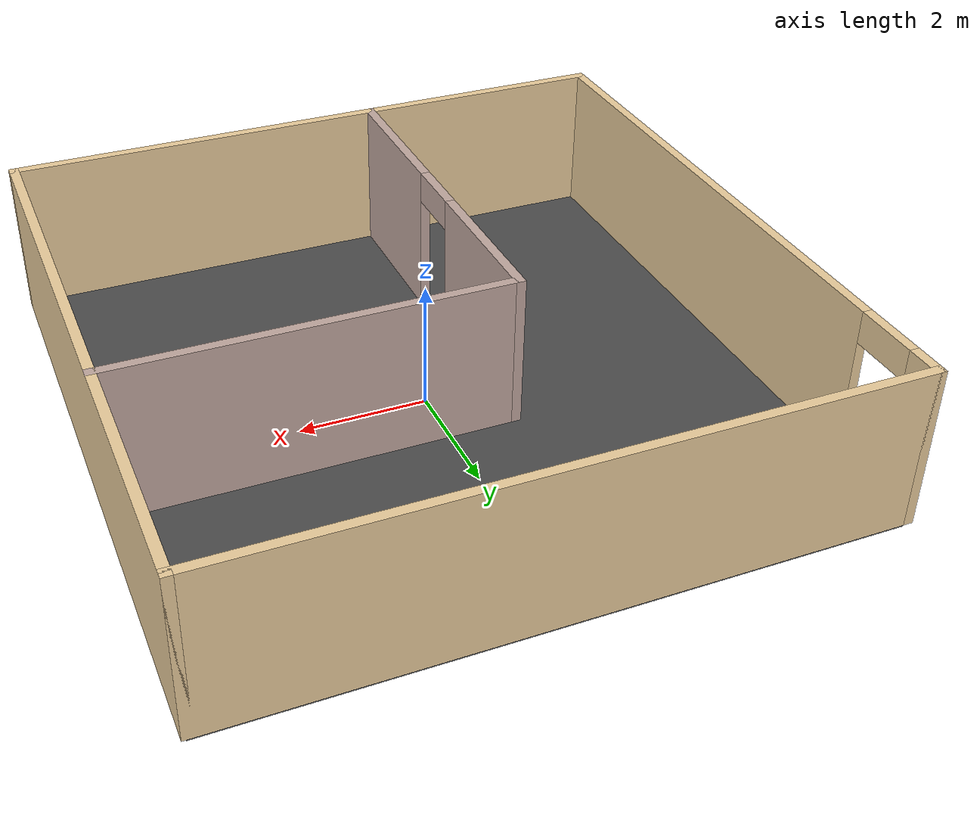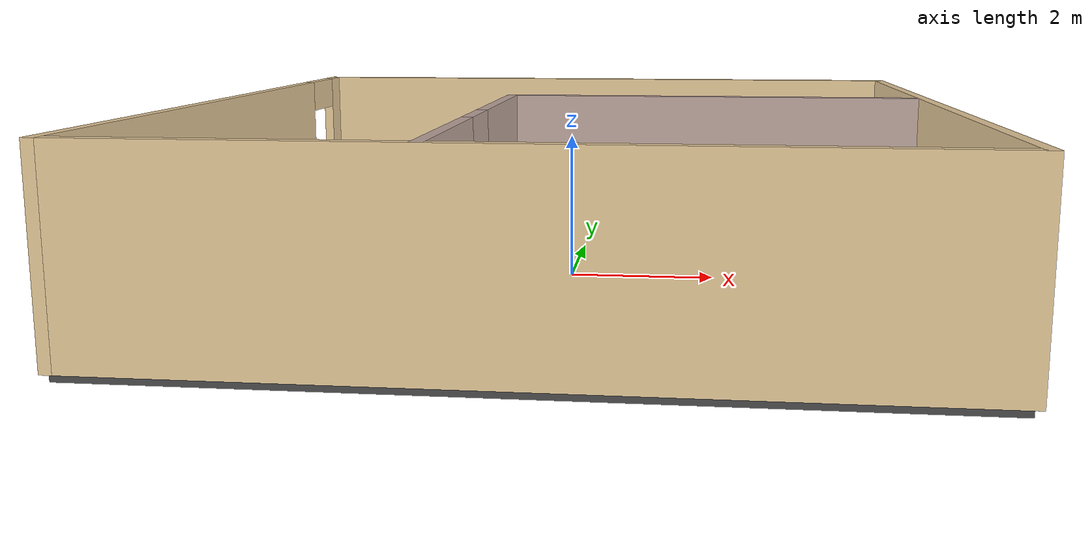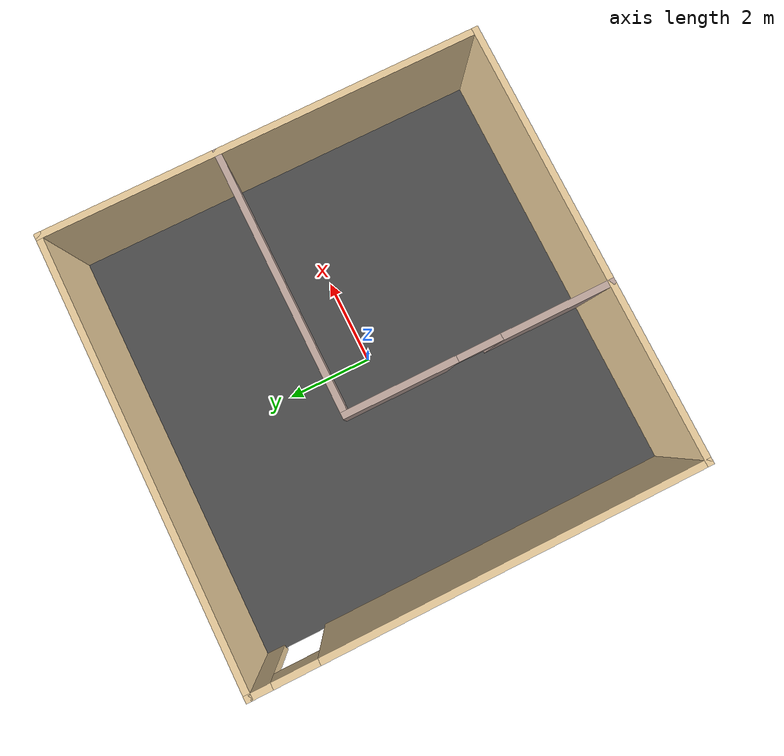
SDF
<?xml version='1.0'?>
<sdf version='1.6'>
  <model name='room'>
    <link name='Wall_24'>
      <pose frame=''>0 5 0 0 -0 0</pose>
      <self_collide>0</self_collide>
      <kinematic>0</kinematic>
      <visual name='Wall_24_Visual'>
        <pose frame=''>0 0 1.25 0 -0 0</pose>
        <geometry>
          <box>
            <size>10.15 0.15 2.5</size>
          </box>
        </geometry>
        <material>
          <script>
            <uri>file://media/materials/scripts/gazebo.material</uri>
            <name>Gazebo/Grey</name>
          </script>
          <ambient>0.921569 0.807843 0.615686 1</ambient>
          <diffuse>0.7 0.7 0.7 1</diffuse>
          <specular>0.01 0.01 0.01 1</specular>
          <emissive>0 0 0 1</emissive>
        </material>
        <cast_shadows>1</cast_shadows>
        <transparency>0</transparency>
      </visual>
      <collision name='Wall_24_Collision'>
        <laser_retro>0</laser_retro>
        <max_contacts>10</max_contacts>
        <pose frame=''>0 0 1.25 0 -0 0</pose>
        <geometry>
          <box>
            <size>10.15 0.15 2.5</size>
          </box>
        </geometry>
        <surface>
          <friction>
            <ode>
              <mu>1</mu>
              <mu2>1</mu2>
              <fdir1>0 0 0</fdir1>
              <slip1>0</slip1>
              <slip2>0</slip2>
            </ode>
            <torsional>
              <coefficient>1</coefficient>
              <patch_radius>0</patch_radius>
              <surface_radius>0</surface_radius>
              <use_patch_radius>1</use_patch_radius>
              <ode>
                <slip>0</slip>
              </ode>
            </torsional>
          </friction>
          <bounce>
            <restitution_coefficient>0</restitution_coefficient>
            <threshold>1e+06</threshold>
          </bounce>
          <contact>
            <collide_without_contact>0</collide_without_contact>
            <collide_without_contact_bitmask>1</collide_without_contact_bitmask>
            <collide_bitmask>1</collide_bitmask>
            <ode>
              <soft_cfm>0</soft_cfm>
              <soft_erp>0.2</soft_erp>
              <kp>1e+13</kp>
              <kd>1</kd>
              <max_vel>0.01</max_vel>
              <min_depth>0</min_depth>
            </ode>
            <bullet>
              <split_impulse>1</split_impulse>
              <split_impulse_penetration_threshold>-0.01</split_impulse_penetration_threshold>
              <soft_cfm>0</soft_cfm>
              <soft_erp>0.2</soft_erp>
              <kp>1e+13</kp>
              <kd>1</kd>
            </bullet>
          </contact>
        </surface>
      </collision>
    </link>
    <link name='Wall_25'>
      <pose frame=''>5 0 0 0 0 -1.5708</pose>
      <self_collide>0</self_collide>
      <kinematic>0</kinematic>
      <visual name='Wall_25_Visual'>
        <pose frame=''>0 0 1.25 0 -0 0</pose>
        <geometry>
          <box>
            <size>10.15 0.15 2.5</size>
          </box>
        </geometry>
        <material>
          <script>
            <uri>file://media/materials/scripts/gazebo.material</uri>
            <name>Gazebo/Grey</name>
          </script>
          <ambient>0.921569 0.807843 0.615686 1</ambient>
          <diffuse>0.7 0.7 0.7 1</diffuse>
          <specular>0.01 0.01 0.01 1</specular>
          <emissive>0 0 0 1</emissive>
        </material>
        <cast_shadows>1</cast_shadows>
        <transparency>0</transparency>
      </visual>
      <collision name='Wall_25_Collision'>
        <laser_retro>0</laser_retro>
        <max_contacts>10</max_contacts>
        <pose frame=''>0 0 1.25 0 -0 0</pose>
        <geometry>
          <box>
            <size>10.15 0.15 2.5</size>
          </box>
        </geometry>
        <surface>
          <friction>
            <ode>
              <mu>1</mu>
              <mu2>1</mu2>
              <fdir1>0 0 0</fdir1>
              <slip1>0</slip1>
              <slip2>0</slip2>
            </ode>
            <torsional>
              <coefficient>1</coefficient>
              <patch_radius>0</patch_radius>
              <surface_radius>0</surface_radius>
              <use_patch_radius>1</use_patch_radius>
              <ode>
                <slip>0</slip>
              </ode>
            </torsional>
          </friction>
          <bounce>
            <restitution_coefficient>0</restitution_coefficient>
            <threshold>1e+06</threshold>
          </bounce>
          <contact>
            <collide_without_contact>0</collide_without_contact>
            <collide_without_contact_bitmask>1</collide_without_contact_bitmask>
            <collide_bitmask>1</collide_bitmask>
            <ode>
              <soft_cfm>0</soft_cfm>
              <soft_erp>0.2</soft_erp>
              <kp>1e+13</kp>
              <kd>1</kd>
              <max_vel>0.01</max_vel>
              <min_depth>0</min_depth>
            </ode>
            <bullet>
              <split_impulse>1</split_impulse>
              <split_impulse_penetration_threshold>-0.01</split_impulse_penetration_threshold>
              <soft_cfm>0</soft_cfm>
              <soft_erp>0.2</soft_erp>
              <kp>1e+13</kp>
              <kd>1</kd>
            </bullet>
          </contact>
        </surface>
      </collision>
    </link>
    <link name='Wall_26'>
      <pose frame=''>0 -5 0 0 -0 3.14159</pose>
      <self_collide>0</self_collide>
      <kinematic>0</kinematic>
      <visual name='Wall_26_Visual'>
        <pose frame=''>0 0 1.25 0 -0 0</pose>
        <geometry>
          <box>
            <size>10.15 0.15 2.5</size>
          </box>
        </geometry>
        <material>
          <script>
            <uri>file://media/materials/scripts/gazebo.material</uri>
            <name>Gazebo/Grey</name>
          </script>
          <ambient>0.921569 0.807843 0.615686 1</ambient>
          <diffuse>0.7 0.7 0.7 1</diffuse>
          <specular>0.01 0.01 0.01 1</specular>
          <emissive>0 0 0 1</emissive>
        </material>
        <cast_shadows>1</cast_shadows>
        <transparency>0</transparency>
      </visual>
      <collision name='Wall_26_Collision'>
        <laser_retro>0</laser_retro>
        <max_contacts>10</max_contacts>
        <pose frame=''>0 0 1.25 0 -0 0</pose>
        <geometry>
          <box>
            <size>10.15 0.15 2.5</size>
          </box>
        </geometry>
        <surface>
          <friction>
            <ode>
              <mu>1</mu>
              <mu2>1</mu2>
              <fdir1>0 0 0</fdir1>
              <slip1>0</slip1>
              <slip2>0</slip2>
            </ode>
            <torsional>
              <coefficient>1</coefficient>
              <patch_radius>0</patch_radius>
              <surface_radius>0</surface_radius>
              <use_patch_radius>1</use_patch_radius>
              <ode>
                <slip>0</slip>
              </ode>
            </torsional>
          </friction>
          <bounce>
            <restitution_coefficient>0</restitution_coefficient>
            <threshold>1e+06</threshold>
          </bounce>
          <contact>
            <collide_without_contact>0</collide_without_contact>
            <collide_without_contact_bitmask>1</collide_without_contact_bitmask>
            <collide_bitmask>1</collide_bitmask>
            <ode>
              <soft_cfm>0</soft_cfm>
              <soft_erp>0.2</soft_erp>
              <kp>1e+13</kp>
              <kd>1</kd>
              <max_vel>0.01</max_vel>
              <min_depth>0</min_depth>
            </ode>
            <bullet>
              <split_impulse>1</split_impulse>
              <split_impulse_penetration_threshold>-0.01</split_impulse_penetration_threshold>
              <soft_cfm>0</soft_cfm>
              <soft_erp>0.2</soft_erp>
              <kp>1e+13</kp>
              <kd>1</kd>
            </bullet>
          </contact>
        </surface>
      </collision>
    </link>
    <link name='Wall_30'>
      <pose frame=''>-5 0 0 0 -0 1.5708</pose>
      <self_collide>0</self_collide>
      <kinematic>0</kinematic>
      <visual name='Wall_30_Visual_1'>
        <pose frame=''>4.7875 0 1.25 0 -0 0</pose>
        <geometry>
          <box>
            <size>0.575 0.15 2.5</size>
          </box>
        </geometry>
        <material>
          <script>
            <uri>file://media/materials/scripts/gazebo.material</uri>
            <name>Gazebo/Grey</name>
          </script>
          <ambient>0.921569 0.807843 0.615686 1</ambient>
          <diffuse>0.7 0.7 0.7 1</diffuse>
          <specular>0.01 0.01 0.01 1</specular>
          <emissive>0 0 0 1</emissive>
        </material>
        <cast_shadows>1</cast_shadows>
        <transparency>0</transparency>
      </visual>
      <visual name='Wall_30_Visual_0'>
        <pose frame=''>-0.7875 0 1.25 0 -0 0</pose>
        <geometry>
          <box>
            <size>8.575 0.15 2.5</size>
          </box>
        </geometry>
        <material>
          <script>
            <uri>file://media/materials/scripts/gazebo.material</uri>
            <name>Gazebo/Grey</name>
          </script>
          <ambient>0.921569 0.807843 0.615686 1</ambient>
          <diffuse>0.7 0.7 0.7 1</diffuse>
          <specular>0.01 0.01 0.01 1</specular>
          <emissive>0 0 0 1</emissive>
        </material>
        <cast_shadows>1</cast_shadows>
        <transparency>0</transparency>
      </visual>
      <visual name='Wall_30_Visual_2'>
        <pose frame=''>4 0 2.25 0 -0 0</pose>
        <geometry>
          <box>
            <size>1 0.15 0.5</size>
          </box>
        </geometry>
        <material>
          <script>
            <uri>file://media/materials/scripts/gazebo.material</uri>
            <name>Gazebo/Grey</name>
          </script>
          <ambient>0.921569 0.807843 0.615686 1</ambient>
          <diffuse>0.7 0.7 0.7 1</diffuse>
          <specular>0.01 0.01 0.01 1</specular>
          <emissive>0 0 0 1</emissive>
        </material>
        <cast_shadows>1</cast_shadows>
        <transparency>0</transparency>
      </visual>
      <collision name='Wall_30_Collision_0'>
        <laser_retro>0</laser_retro>
        <max_contacts>10</max_contacts>
        <pose frame=''>-0.7875 0 1.25 0 -0 0</pose>
        <geometry>
          <box>
            <size>8.575 0.15 2.5</size>
          </box>
        </geometry>
        <surface>
          <friction>
            <ode>
              <mu>1</mu>
              <mu2>1</mu2>
              <fdir1>0 0 0</fdir1>
              <slip1>0</slip1>
              <slip2>0</slip2>
            </ode>
            <torsional>
              <coefficient>1</coefficient>
              <patch_radius>0</patch_radius>
              <surface_radius>0</surface_radius>
              <use_patch_radius>1</use_patch_radius>
              <ode>
                <slip>0</slip>
              </ode>
            </torsional>
          </friction>
          <bounce>
            <restitution_coefficient>0</restitution_coefficient>
            <threshold>1e+06</threshold>
          </bounce>
          <contact>
            <collide_without_contact>0</collide_without_contact>
            <collide_without_contact_bitmask>1</collide_without_contact_bitmask>
            <collide_bitmask>1</collide_bitmask>
            <ode>
              <soft_cfm>0</soft_cfm>
              <soft_erp>0.2</soft_erp>
              <kp>1e+13</kp>
              <kd>1</kd>
              <max_vel>0.01</max_vel>
              <min_depth>0</min_depth>
            </ode>
            <bullet>
              <split_impulse>1</split_impulse>
              <split_impulse_penetration_threshold>-0.01</split_impulse_penetration_threshold>
              <soft_cfm>0</soft_cfm>
              <soft_erp>0.2</soft_erp>
              <kp>1e+13</kp>
              <kd>1</kd>
            </bullet>
          </contact>
        </surface>
      </collision>
      <collision name='Wall_30_Collision_2'>
        <laser_retro>0</laser_retro>
        <max_contacts>10</max_contacts>
        <pose frame=''>4 0 2.25 0 -0 0</pose>
        <geometry>
          <box>
            <size>1 0.15 0.5</size>
          </box>
        </geometry>
        <surface>
          <friction>
            <ode>
              <mu>1</mu>
              <mu2>1</mu2>
              <fdir1>0 0 0</fdir1>
              <slip1>0</slip1>
              <slip2>0</slip2>
            </ode>
            <torsional>
              <coefficient>1</coefficient>
              <patch_radius>0</patch_radius>
              <surface_radius>0</surface_radius>
              <use_patch_radius>1</use_patch_radius>
              <ode>
                <slip>0</slip>
              </ode>
            </torsional>
          </friction>
          <bounce>
            <restitution_coefficient>0</restitution_coefficient>
            <threshold>1e+06</threshold>
          </bounce>
          <contact>
            <collide_without_contact>0</collide_without_contact>
            <collide_without_contact_bitmask>1</collide_without_contact_bitmask>
            <collide_bitmask>1</collide_bitmask>
            <ode>
              <soft_cfm>0</soft_cfm>
              <soft_erp>0.2</soft_erp>
              <kp>1e+13</kp>
              <kd>1</kd>
              <max_vel>0.01</max_vel>
              <min_depth>0</min_depth>
            </ode>
            <bullet>
              <split_impulse>1</split_impulse>
              <split_impulse_penetration_threshold>-0.01</split_impulse_penetration_threshold>
              <soft_cfm>0</soft_cfm>
              <soft_erp>0.2</soft_erp>
              <kp>1e+13</kp>
              <kd>1</kd>
            </bullet>
          </contact>
        </surface>
      </collision>
      <collision name='Wall_30_Collision_1'>
        <laser_retro>0</laser_retro>
        <max_contacts>10</max_contacts>
        <pose frame=''>4.7875 0 1.25 0 -0 0</pose>
        <geometry>
          <box>
            <size>0.575 0.15 2.5</size>
          </box>
        </geometry>
        <surface>
          <friction>
            <ode>
              <mu>1</mu>
              <mu2>1</mu2>
              <fdir1>0 0 0</fdir1>
              <slip1>0</slip1>
              <slip2>0</slip2>
            </ode>
            <torsional>
              <coefficient>1</coefficient>
              <patch_radius>0</patch_radius>
              <surface_radius>0</surface_radius>
              <use_patch_radius>1</use_patch_radius>
              <ode>
                <slip>0</slip>
              </ode>
            </torsional>
          </friction>
          <bounce>
            <restitution_coefficient>0</restitution_coefficient>
            <threshold>1e+06</threshold>
          </bounce>
          <contact>
            <collide_without_contact>0</collide_without_contact>
            <collide_without_contact_bitmask>1</collide_without_contact_bitmask>
            <collide_bitmask>1</collide_bitmask>
            <ode>
              <soft_cfm>0</soft_cfm>
              <soft_erp>0.2</soft_erp>
              <kp>1e+13</kp>
              <kd>1</kd>
              <max_vel>0.01</max_vel>
              <min_depth>0</min_depth>
            </ode>
            <bullet>
              <split_impulse>1</split_impulse>
              <split_impulse_penetration_threshold>-0.01</split_impulse_penetration_threshold>
              <soft_cfm>0</soft_cfm>
              <soft_erp>0.2</soft_erp>
              <kp>1e+13</kp>
              <kd>1</kd>
            </bullet>
          </contact>
        </surface>
      </collision>
    </link>
    <link name='Wall_32'>
      <pose frame=''>-1 -2 0 0 -0 1.5708</pose>
      <self_collide>0</self_collide>
      <kinematic>0</kinematic>
      <visual name='Wall_32_Visual_0'>
        <pose frame=''>-1.78673 0 1.25 0 -0 0</pose>
        <geometry>
          <box>
            <size>2.57653 0.15 2.5</size>
          </box>
        </geometry>
        <material>
          <script>
            <uri>file://media/materials/scripts/gazebo.material</uri>
            <name>Gazebo/Grey</name>
          </script>
          <ambient>0.760784 0.662745 0.627451 1</ambient>
          <diffuse>0.7 0.7 0.7 1</diffuse>
          <specular>0.01 0.01 0.01 1</specular>
          <emissive>0 0 0 1</emissive>
        </material>
        <cast_shadows>1</cast_shadows>
        <transparency>0</transparency>
      </visual>
      <visual name='Wall_32_Visual_1'>
        <pose frame=''>1.78827 0 1.25 0 -0 0</pose>
        <geometry>
          <box>
            <size>2.57347 0.15 2.5</size>
          </box>
        </geometry>
        <material>
          <script>
            <uri>file://media/materials/scripts/gazebo.material</uri>
            <name>Gazebo/Grey</name>
          </script>
          <ambient>0.760784 0.662745 0.627451 1</ambient>
          <diffuse>0.7 0.7 0.7 1</diffuse>
          <specular>0.01 0.01 0.01 1</specular>
          <emissive>0 0 0 1</emissive>
        </material>
        <cast_shadows>1</cast_shadows>
        <transparency>0</transparency>
      </visual>
      <visual name='Wall_32_Visual_2'>
        <pose frame=''>0.001534 0 2.25 0 -0 0</pose>
        <geometry>
          <box>
            <size>1 0.15 0.5</size>
          </box>
        </geometry>
        <material>
          <script>
            <uri>file://media/materials/scripts/gazebo.material</uri>
            <name>Gazebo/Grey</name>
          </script>
          <ambient>0.760784 0.662745 0.627451 1</ambient>
          <diffuse>0.7 0.7 0.7 1</diffuse>
          <specular>0.01 0.01 0.01 1</specular>
          <emissive>0 0 0 1</emissive>
        </material>
        <cast_shadows>1</cast_shadows>
        <transparency>0</transparency>
      </visual>
      <collision name='Wall_32_Collision_0'>
        <laser_retro>0</laser_retro>
        <max_contacts>10</max_contacts>
        <pose frame=''>-1.78673 0 1.25 0 -0 0</pose>
        <geometry>
          <box>
            <size>2.57653 0.15 2.5</size>
          </box>
        </geometry>
        <surface>
          <friction>
            <ode>
              <mu>1</mu>
              <mu2>1</mu2>
              <fdir1>0 0 0</fdir1>
              <slip1>0</slip1>
              <slip2>0</slip2>
            </ode>
            <torsional>
              <coefficient>1</coefficient>
              <patch_radius>0</patch_radius>
              <surface_radius>0</surface_radius>
              <use_patch_radius>1</use_patch_radius>
              <ode>
                <slip>0</slip>
              </ode>
            </torsional>
          </friction>
          <bounce>
            <restitution_coefficient>0</restitution_coefficient>
            <threshold>1e+06</threshold>
          </bounce>
          <contact>
            <collide_without_contact>0</collide_without_contact>
            <collide_without_contact_bitmask>1</collide_without_contact_bitmask>
            <collide_bitmask>1</collide_bitmask>
            <ode>
              <soft_cfm>0</soft_cfm>
              <soft_erp>0.2</soft_erp>
              <kp>1e+13</kp>
              <kd>1</kd>
              <max_vel>0.01</max_vel>
              <min_depth>0</min_depth>
            </ode>
            <bullet>
              <split_impulse>1</split_impulse>
              <split_impulse_penetration_threshold>-0.01</split_impulse_penetration_threshold>
              <soft_cfm>0</soft_cfm>
              <soft_erp>0.2</soft_erp>
              <kp>1e+13</kp>
              <kd>1</kd>
            </bullet>
          </contact>
        </surface>
      </collision>
      <collision name='Wall_32_Collision_1'>
        <laser_retro>0</laser_retro>
        <max_contacts>10</max_contacts>
        <pose frame=''>1.78827 0 1.25 0 -0 0</pose>
        <geometry>
          <box>
            <size>2.57347 0.15 2.5</size>
          </box>
        </geometry>
        <surface>
          <friction>
            <ode>
              <mu>1</mu>
              <mu2>1</mu2>
              <fdir1>0 0 0</fdir1>
              <slip1>0</slip1>
              <slip2>0</slip2>
            </ode>
            <torsional>
              <coefficient>1</coefficient>
              <patch_radius>0</patch_radius>
              <surface_radius>0</surface_radius>
              <use_patch_radius>1</use_patch_radius>
              <ode>
                <slip>0</slip>
              </ode>
            </torsional>
          </friction>
          <bounce>
            <restitution_coefficient>0</restitution_coefficient>
            <threshold>1e+06</threshold>
          </bounce>
          <contact>
            <collide_without_contact>0</collide_without_contact>
            <collide_without_contact_bitmask>1</collide_without_contact_bitmask>
            <collide_bitmask>1</collide_bitmask>
            <ode>
              <soft_cfm>0</soft_cfm>
              <soft_erp>0.2</soft_erp>
              <kp>1e+13</kp>
              <kd>1</kd>
              <max_vel>0.01</max_vel>
              <min_depth>0</min_depth>
            </ode>
            <bullet>
              <split_impulse>1</split_impulse>
              <split_impulse_penetration_threshold>-0.01</split_impulse_penetration_threshold>
              <soft_cfm>0</soft_cfm>
              <soft_erp>0.2</soft_erp>
              <kp>1e+13</kp>
              <kd>1</kd>
            </bullet>
          </contact>
        </surface>
      </collision>
      <collision name='Wall_32_Collision_2'>
        <laser_retro>0</laser_retro>
        <max_contacts>10</max_contacts>
        <pose frame=''>0.001534 0 2.25 0 -0 0</pose>
        <geometry>
          <box>
            <size>1 0.15 0.5</size>
          </box>
        </geometry>
        <surface>
          <friction>
            <ode>
              <mu>1</mu>
              <mu2>1</mu2>
              <fdir1>0 0 0</fdir1>
              <slip1>0</slip1>
              <slip2>0</slip2>
            </ode>
            <torsional>
              <coefficient>1</coefficient>
              <patch_radius>0</patch_radius>
              <surface_radius>0</surface_radius>
              <use_patch_radius>1</use_patch_radius>
              <ode>
                <slip>0</slip>
              </ode>
            </torsional>
          </friction>
          <bounce>
            <restitution_coefficient>0</restitution_coefficient>
            <threshold>1e+06</threshold>
          </bounce>
          <contact>
            <collide_without_contact>0</collide_without_contact>
            <collide_without_contact_bitmask>1</collide_without_contact_bitmask>
            <collide_bitmask>1</collide_bitmask>
            <ode>
              <soft_cfm>0</soft_cfm>
              <soft_erp>0.2</soft_erp>
              <kp>1e+13</kp>
              <kd>1</kd>
              <max_vel>0.01</max_vel>
              <min_depth>0</min_depth>
            </ode>
            <bullet>
              <split_impulse>1</split_impulse>
              <split_impulse_penetration_threshold>-0.01</split_impulse_penetration_threshold>
              <soft_cfm>0</soft_cfm>
              <soft_erp>0.2</soft_erp>
              <kp>1e+13</kp>
              <kd>1</kd>
            </bullet>
          </contact>
        </surface>
      </collision>
    </link>
    <link name='Wall_33'>
      <pose frame=''>2 1 0 0 -0 0</pose>
      <self_collide>0</self_collide>
      <kinematic>0</kinematic>
      <visual name='Wall_33_Visual'>
        <pose frame=''>0 0 1.25 0 -0 0</pose>
        <geometry>
          <box>
            <size>6.15 0.15 2.5</size>
          </box>
        </geometry>
        <material>
          <script>
            <uri>file://media/materials/scripts/gazebo.material</uri>
            <name>Gazebo/Grey</name>
          </script>
          <ambient>0.760784 0.662745 0.627451 1</ambient>
          <diffuse>0.7 0.7 0.7 1</diffuse>
          <specular>0.01 0.01 0.01 1</specular>
          <emissive>0 0 0 1</emissive>
        </material>
        <cast_shadows>1</cast_shadows>
        <transparency>0</transparency>
      </visual>
      <collision name='Wall_33_Collision'>
        <laser_retro>0</laser_retro>
        <max_contacts>10</max_contacts>
        <pose frame=''>0 0 1.25 0 -0 0</pose>
        <geometry>
          <box>
            <size>6.15 0.15 2.5</size>
          </box>
        </geometry>
        <surface>
          <friction>
            <ode>
              <mu>1</mu>
              <mu2>1</mu2>
              <fdir1>0 0 0</fdir1>
              <slip1>0</slip1>
              <slip2>0</slip2>
            </ode>
            <torsional>
              <coefficient>1</coefficient>
              <patch_radius>0</patch_radius>
              <surface_radius>0</surface_radius>
              <use_patch_radius>1</use_patch_radius>
              <ode>
                <slip>0</slip>
              </ode>
            </torsional>
          </friction>
          <bounce>
            <restitution_coefficient>0</restitution_coefficient>
            <threshold>1e+06</threshold>
          </bounce>
          <contact>
            <collide_without_contact>0</collide_without_contact>
            <collide_without_contact_bitmask>1</collide_without_contact_bitmask>
            <collide_bitmask>1</collide_bitmask>
            <ode>
              <soft_cfm>0</soft_cfm>
              <soft_erp>0.2</soft_erp>
              <kp>1e+13</kp>
              <kd>1</kd>
              <max_vel>0.01</max_vel>
              <min_depth>0</min_depth>
            </ode>
            <bullet>
              <split_impulse>1</split_impulse>
              <split_impulse_penetration_threshold>-0.01</split_impulse_penetration_threshold>
              <soft_cfm>0</soft_cfm>
              <soft_erp>0.2</soft_erp>
              <kp>1e+13</kp>
              <kd>1</kd>
            </bullet>
          </contact>
        </surface>
      </collision>
    </link>
    <link name='link_0'>
      <pose frame=''>0 0 0 0 -0 0</pose>
      <inertial>
        <mass>5000</mass>
        <inertia>
          <ixx>10</ixx>
          <ixy>0</ixy>
          <ixz>0</ixz>
          <iyy>10</iyy>
          <iyz>0</iyz>
          <izz>20</izz>
        </inertia>
        <pose frame=''>0 0 0 0 -0 0</pose>
      </inertial>
      <gravity>1</gravity>
      <self_collide>0</self_collide>
      <kinematic>0</kinematic>
      <visual name='visual'>
        <pose frame=''>0 0 0 0 -0 0</pose>
        <geometry>
          <box>
            <size>10 10 0.2</size>
          </box>
        </geometry>
        <material>
          <lighting>1</lighting>
          <script>
            <uri>file://media/materials/scripts/gazebo.material</uri>
            <name>Gazebo/DarkGrey</name>
          </script>
          <ambient>0.3 0.3 0.3 1</ambient>
          <diffuse>0.7 0.7 0.7 1</diffuse>
          <specular>0.01 0.01 0.01 1</specular>
          <emissive>0 0 0 1</emissive>
          <shader type='vertex'>
            <normal_map>__default__</normal_map>
          </shader>
        </material>
        <cast_shadows>1</cast_shadows>
        <transparency>0</transparency>
      </visual>
      <collision name='collision'>
        <laser_retro>0</laser_retro>
        <max_contacts>10</max_contacts>
        <pose frame=''>0 0 0 0 -0 0</pose>
        <geometry>
          <box>
            <size>10 10 0.2</size>
          </box>
        </geometry>
        <surface>
          <friction>
            <ode>
              <mu>1</mu>
              <mu2>1</mu2>
              <fdir1>0 0 0</fdir1>
              <slip1>0</slip1>
              <slip2>0</slip2>
            </ode>
            <torsional>
              <coefficient>1</coefficient>
              <patch_radius>0</patch_radius>
              <surface_radius>0</surface_radius>
              <use_patch_radius>1</use_patch_radius>
              <ode>
                <slip>0</slip>
              </ode>
            </torsional>
          </friction>
          <bounce>
            <restitution_coefficient>0</restitution_coefficient>
            <threshold>1e+06</threshold>
          </bounce>
          <contact>
            <collide_without_contact>0</collide_without_contact>
            <collide_without_contact_bitmask>1</collide_without_contact_bitmask>
            <collide_bitmask>1</collide_bitmask>
            <ode>
              <soft_cfm>0</soft_cfm>
              <soft_erp>0.2</soft_erp>
              <kp>1e+13</kp>
              <kd>1</kd>
              <max_vel>0.01</max_vel>
              <min_depth>0</min_depth>
            </ode>
            <bullet>
              <split_impulse>1</split_impulse>
              <split_impulse_penetration_threshold>-0.01</split_impulse_penetration_threshold>
              <soft_cfm>0</soft_cfm>
              <soft_erp>0.2</soft_erp>
              <kp>1e+13</kp>
              <kd>1</kd>
            </bullet>
          </contact>
        </surface>
      </collision>
    </link>
    <static>1</static>
    <allow_auto_disable>1</allow_auto_disable>
  </model>
</sdf>
